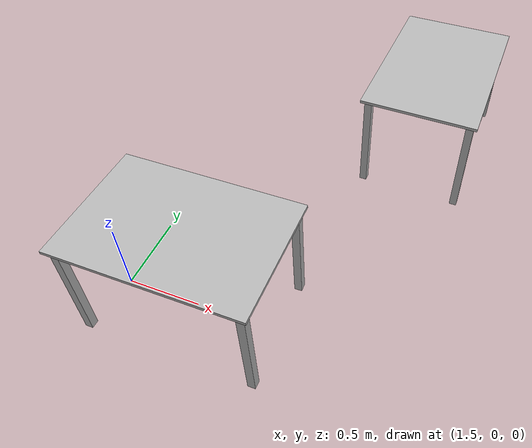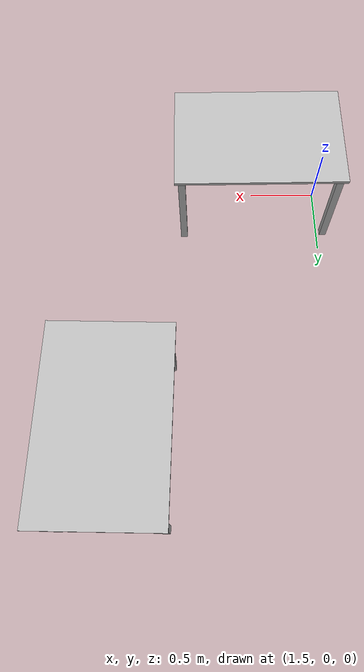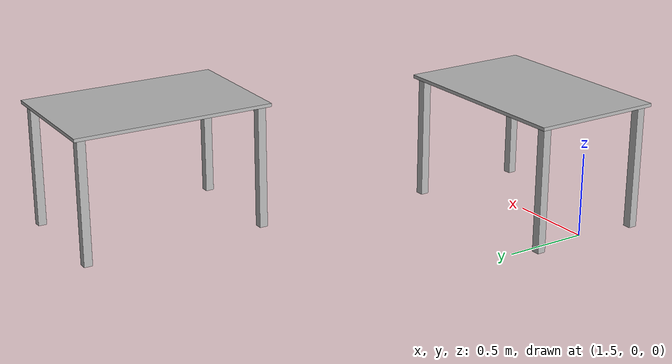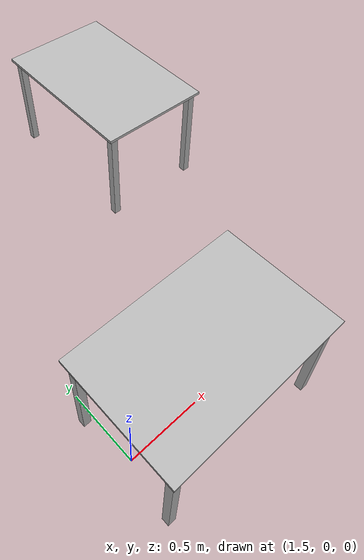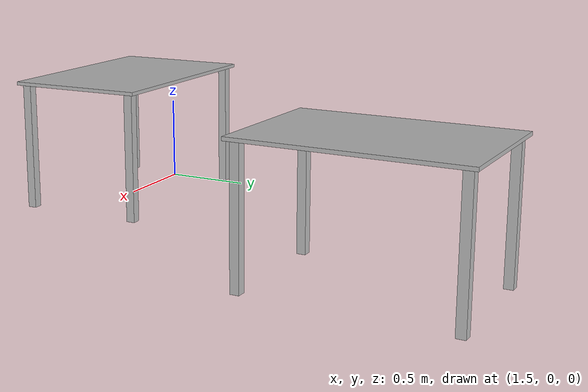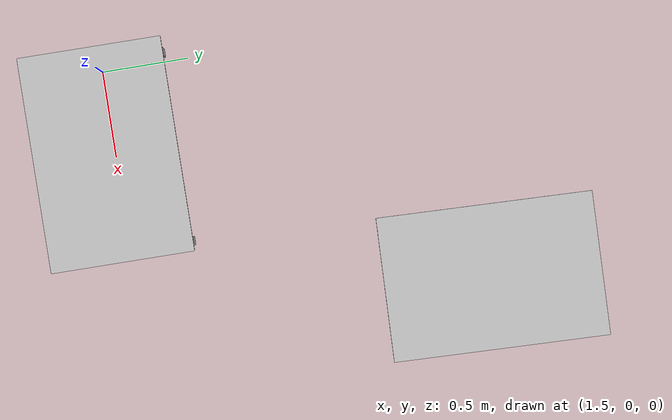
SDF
<sdf version="1.6">
 <world name="robot-lab">
  <include><name>table1</name><uri>model://table</uri><pose>2 0 0 0 0 0</pose></include>
  <include><name>table2</name><uri>model://table</uri><pose>3 2 0 0 0 1.54</pose></include>
  <light type="directional" name="sun">
   <pose>0 0 10 0 0 0</pose>
   <diffuse>0.8 0.8 0.8 1</diffuse>
   <specular>0.2 0.2 0.2 1</specular>
   <direction>0.5 0.1 -0.9</direction>
   <attenuation>
    <range>1000</range>
    <constant>0.9</constant>
    <linear>0.01</linear>
    <quadratic>0.001</quadratic>
   </attenuation>
  </light>
  <physics type="ode">
   <real_time_update_rate>333.0</real_time_update_rate>
   <max_step_size>0.003</max_step_size>
   <ode><solver type="quick"><iters>100</iters></solver><constraints><cfm>0.0001</cfm></constraints></ode>
  </physics>
 </world>
</sdf>

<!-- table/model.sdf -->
<sdf version="1.6">
  <model name="table">
    <static>true</static>
    <link name="1_link">
      <collision name="1_col">
        <geometry>
          <box>
            <size>1.2 0.8 0.02</size>
          </box>
        </geometry>
      </collision>
      <visual name="1_vis">
        <geometry>
          <box>
            <size>1.2 0.8 0.02</size>
          </box>
        </geometry>
      </visual>
      <pose>0 0 0.75 0 0 0</pose>
    </link>
    <link name="2_link">
      <collision name="2_col">
        <geometry>
          <box>
            <size>0.05 0.05 0.74</size>
          </box>
        </geometry>
      </collision>
      <visual name="2_vis">
        <geometry>
          <box>
            <size>0.05 0.05 0.74</size>
          </box>
        </geometry>
      </visual>
      <pose>-0.55 -0.35 0.37 0 0 0</pose>
    </link>
    <link name="3_link">
      <collision name="3_col">
        <geometry>
          <box>
            <size>0.05 0.05 0.74</size>
          </box>
        </geometry>
      </collision>
      <visual name="3_vis">
        <geometry>
          <box>
            <size>0.05 0.05 0.74</size>
          </box>
        </geometry>
      </visual>
      <pose>0.55 -0.35 0.37 0 0 0</pose>
    </link>
    <link name="4_link">
      <collision name="4_col">
        <geometry>
          <box>
            <size>0.05 0.05 0.74</size>
          </box>
        </geometry>
      </collision>
      <visual name="4_vis">
        <geometry>
          <box>
            <size>0.05 0.05 0.74</size>
          </box>
        </geometry>
      </visual>
      <pose>-0.55 0.35 0.37 0 0 0</pose>
    </link>
    <link name="5_link">
      <collision name="5_col">
        <geometry>
          <box>
            <size>0.05 0.05 0.74</size>
          </box>
        </geometry>
      </collision>
      <visual name="5_vis">
        <geometry>
          <box>
            <size>0.05 0.05 0.74</size>
          </box>
        </geometry>
      </visual>
      <pose>0.55 0.35 0.37 0 0 0</pose>
    </link>
  </model>
</sdf>
